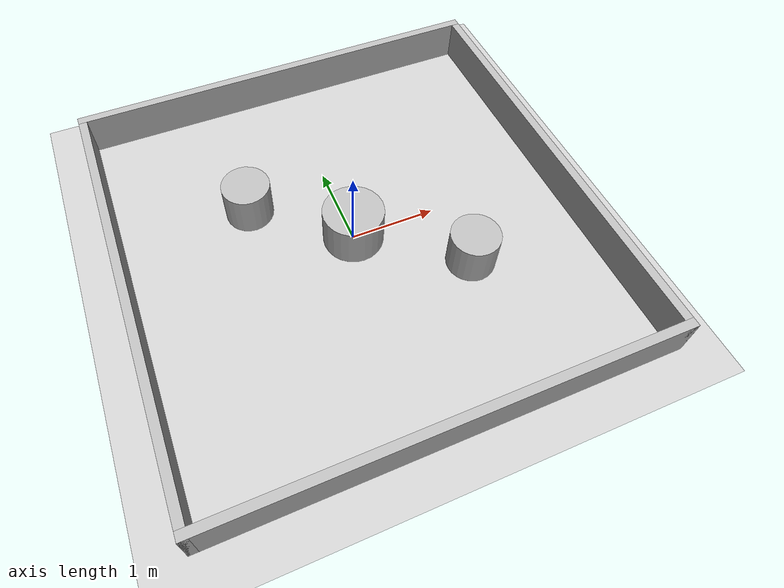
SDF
<?xml version="1.0"?>
<sdf version="1.6"><world name="navigation">
  <physics type="ode"><max_step_size>0.001</max_step_size><real_time_update_rate>1000</real_time_update_rate></physics>
  <light name="sun" type="directional"><cast_shadows>false</cast_shadows><direction>-0.5 0.1 -0.9</direction></light>
  <model name="floor"><static>true</static><link name="floor">
    <collision name="c"><geometry><plane><normal>0 0 1</normal><size>100 100</size></plane></geometry></collision>
    <visual name="v"><geometry><plane><normal>0 0 1</normal><size>100 100</size></plane></geometry></visual>
  </link></model>
  <model name="north"><static>true</static><pose>0 2.55 0.25 0 0 0</pose><link name="wall">
    <collision name="c"><geometry><box><size>5.2 0.1 0.5</size></box></geometry></collision>
    <visual name="v"><geometry><box><size>5.2 0.1 0.5</size></box></geometry></visual>
  </link></model>
  <model name="south"><static>true</static><pose>0 -2.55 0.25 0 0 0</pose><link name="wall">
    <collision name="c"><geometry><box><size>5.2 0.1 0.5</size></box></geometry></collision>
    <visual name="v"><geometry><box><size>5.2 0.1 0.5</size></box></geometry></visual>
  </link></model>
  <model name="east"><static>true</static><pose>2.55 0 0.25 0 0 0</pose><link name="wall">
    <collision name="c"><geometry><box><size>0.1 5.2 0.5</size></box></geometry></collision>
    <visual name="v"><geometry><box><size>0.1 5.2 0.5</size></box></geometry></visual>
  </link></model>
  <model name="west"><static>true</static><pose>-2.55 0 0.25 0 0 0</pose><link name="wall">
    <collision name="c"><geometry><box><size>0.1 5.2 0.5</size></box></geometry></collision>
    <visual name="v"><geometry><box><size>0.1 5.2 0.5</size></box></geometry></visual>
  </link></model>
  <model name="center"><static>true</static><pose>0 0 0.25 0 0 0</pose><link name="body">
    <collision name="c"><geometry><cylinder><radius>0.35</radius><length>0.5</length></cylinder></geometry></collision>
    <visual name="v"><geometry><cylinder><radius>0.35</radius><length>0.5</length></cylinder></geometry></visual>
  </link></model>
  <model name="southeast"><static>true</static><pose>1.1 -0.8 0.25 0 0 0</pose><link name="body">
    <collision name="c"><geometry><cylinder><radius>0.28</radius><length>0.5</length></cylinder></geometry></collision>
    <visual name="v"><geometry><cylinder><radius>0.28</radius><length>0.5</length></cylinder></geometry></visual>
  </link></model>
  <model name="northwest"><static>true</static><pose>-1.0 0.8 0.25 0 0 0</pose><link name="body">
    <collision name="c"><geometry><cylinder><radius>0.28</radius><length>0.5</length></cylinder></geometry></collision>
    <visual name="v"><geometry><cylinder><radius>0.28</radius><length>0.5</length></cylinder></geometry></visual>
  </link></model>
</world></sdf>
